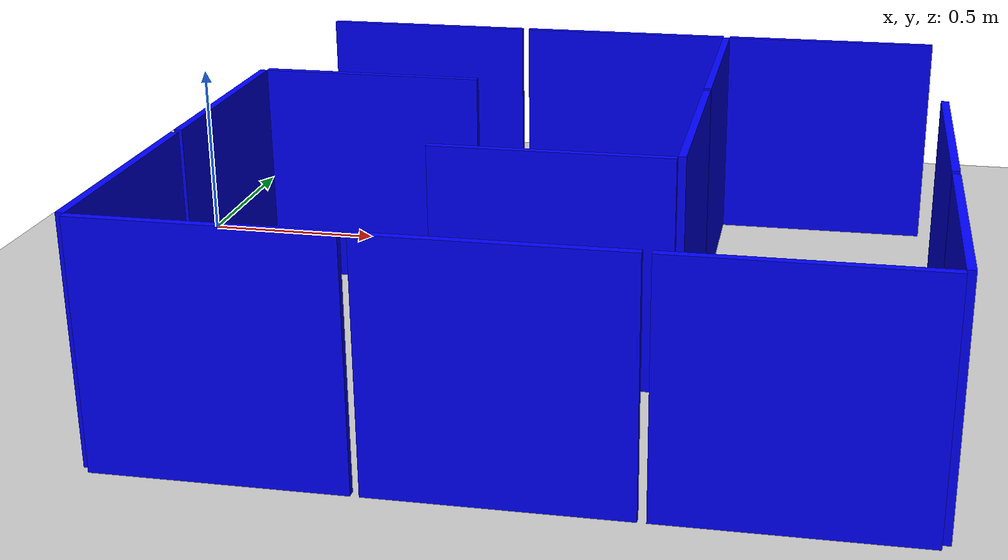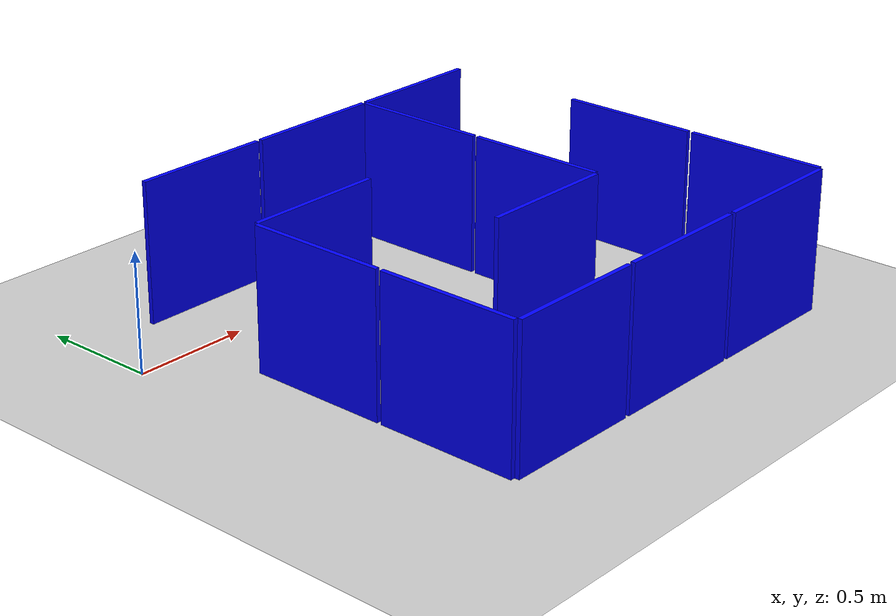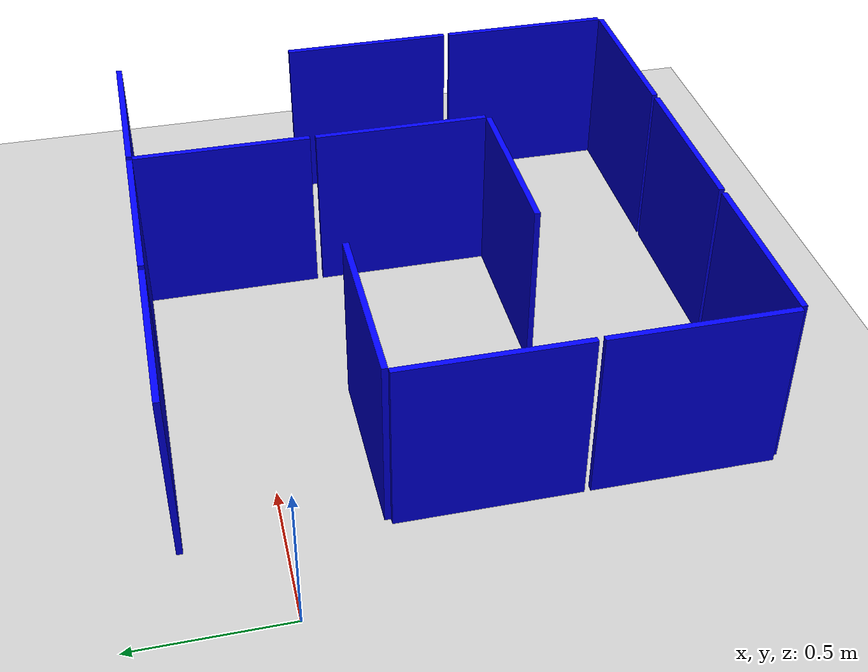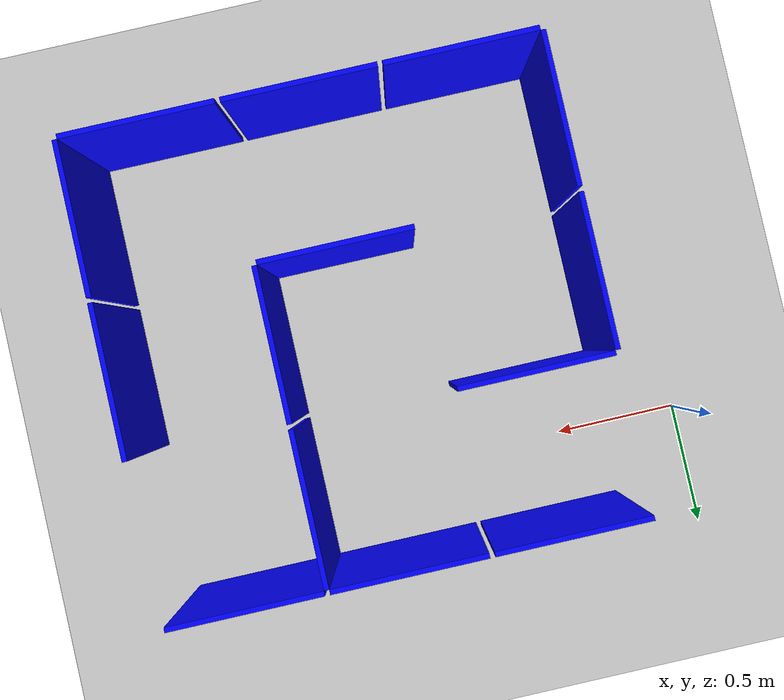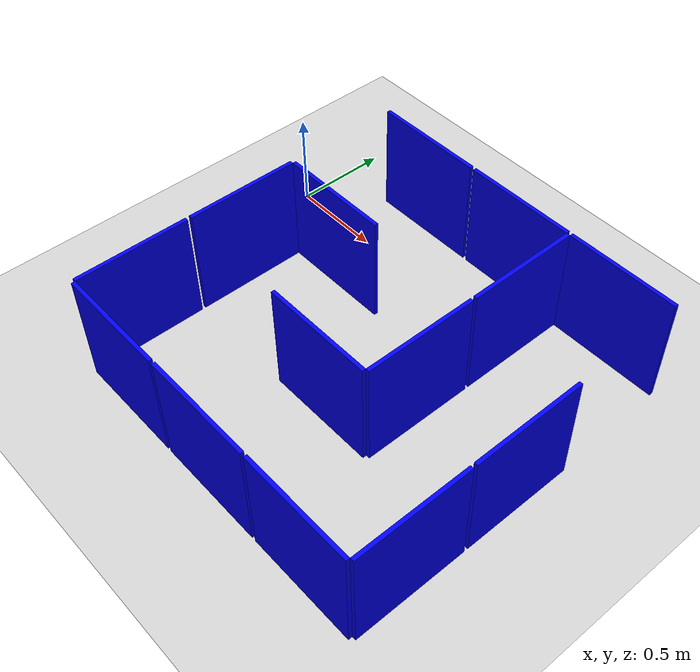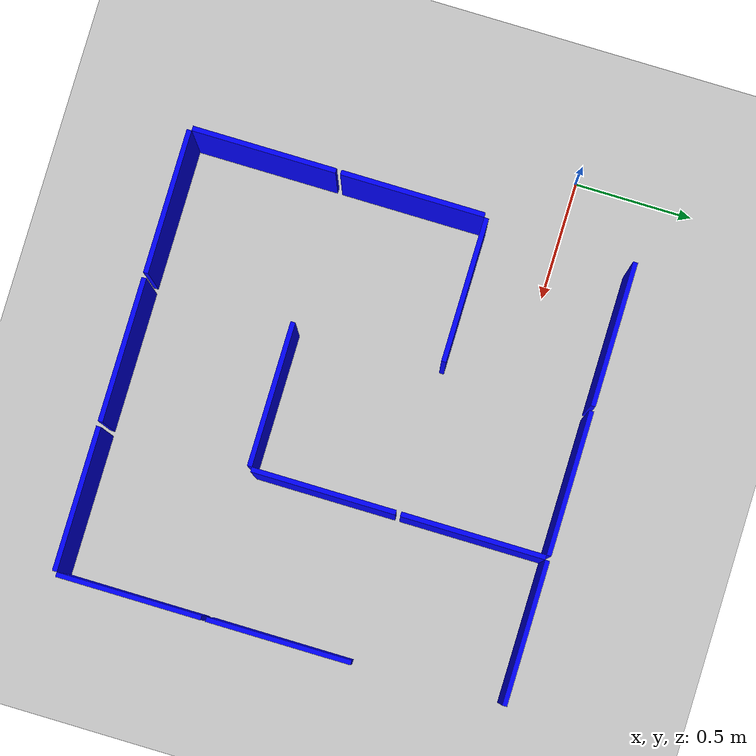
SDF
<sdf version='1.6'>
  <world name='default'>
    <scene>
      <shadows>0</shadows>
    </scene>

    <light name='sun' type='directional'>
      <cast_shadows>0</cast_shadows>
      <pose frame=''>0 0 5 0 -0 0</pose>
      <diffuse>0.8 0.8 0.8 1</diffuse>
      <specular>0.1 0.1 0.1 1</specular>
      <attenuation>
        <range>1000</range>
        <constant>0.9</constant>
        <linear>0.01</linear>
        <quadratic>0.001</quadratic>
      </attenuation>
      <direction>-0.5 0.5 -1</direction>
    </light>

    <physics type='ode'>
      <max_step_size>0.001</max_step_size>
      <real_time_factor>1</real_time_factor>
      <real_time_update_rate>1000</real_time_update_rate>
      <gravity>0 0 -9.8</gravity>
    </physics>

    <include>
      <uri>model://ground_plane</uri>
    </include>

    <!-- create maze -->
    <include>
      <pose> 0.62 -0.31  0 0 0 1.570796326795 </pose>
      <uri>model://ra_wall_blue</uri>
    </include>

    <include>
      <pose> 0.62  0.31  0 0 0 1.570796326795 </pose>
      <uri>model://ra_wall_blue</uri>
    </include>
    <include>
      <pose> 1.24  0.31  0 0 0 1.570796326795 </pose>
      <uri>model://ra_wall_blue</uri>
    </include>
    <include>
      <pose> 1.86  0.31  0 0 0 1.570796326795 </pose>
      <uri>model://ra_wall_blue</uri>
    </include>

    <include>
      <pose>  0.31 -0.62  0 0 0 0 </pose>
      <uri>model://ra_wall_blue</uri>
    </include>
    <include>
      <pose>  0.31 -1.24  0 0 0 0 </pose>
      <uri>model://ra_wall_blue</uri>
    </include>

    <include>
      <pose> 0.62 -1.55  0 0 0 1.570796326795 </pose>
      <uri>model://ra_wall_blue</uri>
    </include>
    <include>
      <pose> 1.24 -1.55  0 0 0 1.570796326795 </pose>
      <uri>model://ra_wall_blue</uri>
    </include>
    <include>
      <pose> 1.86 -1.55  0 0 0 1.570796326795 </pose>
      <uri>model://ra_wall_blue</uri>
    </include>

    <include>
      <pose> 1.24 -0.93  0 0 0 1.570796326795 </pose>
      <uri>model://ra_wall_blue</uri>
    </include>

    <include>
      <pose>  1.55  0.0   0 0 0 0 </pose>
      <uri>model://ra_wall_blue</uri>
    </include>
    <include>
      <pose>  1.55 -0.62  0 0 0 0 </pose>
      <uri>model://ra_wall_blue</uri>
    </include>

    <include>
      <pose>  2.17 -0.62  0 0 0 0 </pose>
      <uri>model://ra_wall_blue</uri>
    </include>
    <include>
      <pose>  2.17 -1.24  0 0 0 0 </pose>
      <uri>model://ra_wall_blue</uri>
    </include>
    <!-- create maze -->
  </world>
</sdf>

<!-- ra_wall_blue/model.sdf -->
<sdf version="1.5">
  <model name="ra_wall_blue">
    <static>True</static>
    <link name="link">
      <collision name="collision">
        <pose>0 0 0.3  0 0 0</pose>
        <geometry>
          <box>
            <size>0.02 0.6 0.6</size>
          </box>
        </geometry>
      </collision>
      <visual name="visual">
        <pose>0 0 0.3  0 0 0</pose>
        <geometry>
          <box>
            <size>0.02 0.6 0.6</size>
          </box>
        </geometry>
        <material>
          <ambient>0 0 1 1</ambient>
          <diffuse>0 0 1 1</diffuse>
          <specular>0.1 0.1 0.1 1</specular>
        </material>
      </visual>
    </link>
  </model>
</sdf>
